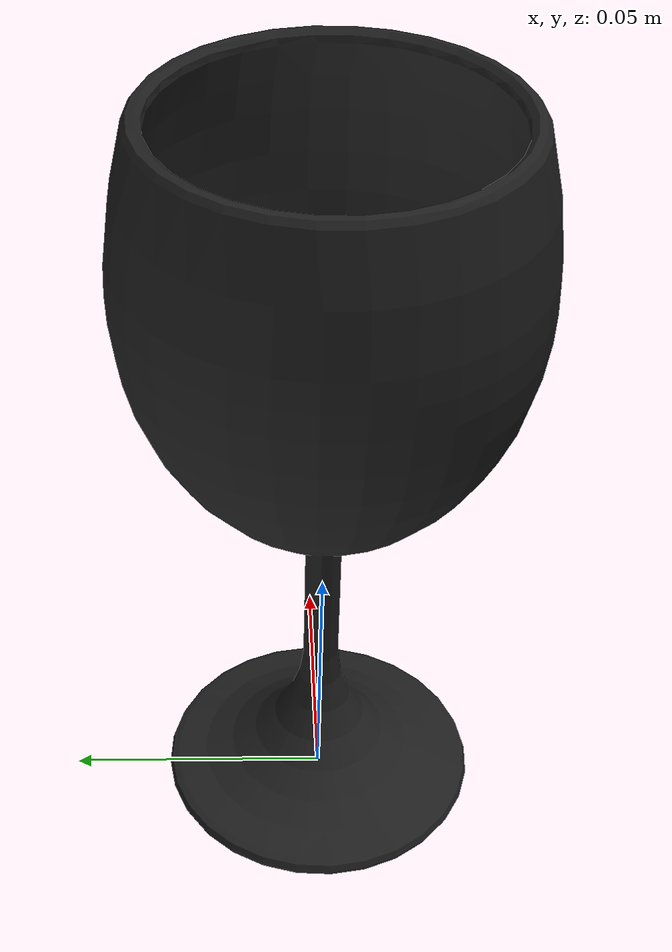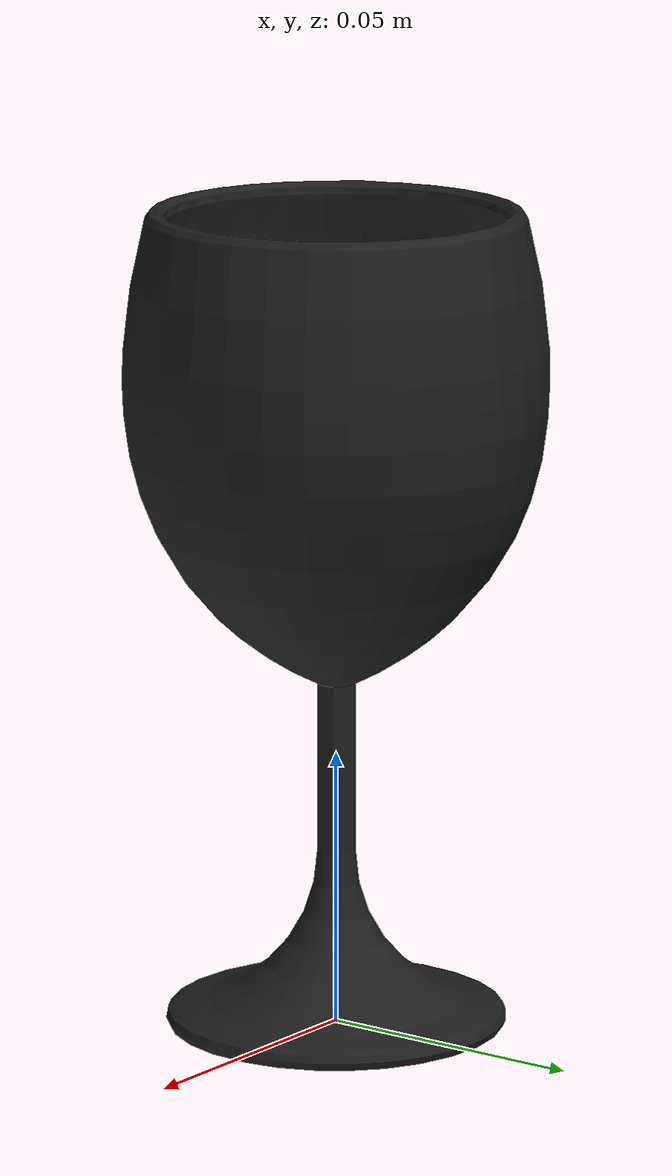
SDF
<?xml version='1.0'?>
<sdf version="1.5">
  <model name="wine_cup"> <!-- Very important to change-->
    <static>false</static>
    <pose>0 0 0 0 0 0</pose> <!-- Translation: X Y Z and Rotation: Roll Pitch Yaw (In Radian)-->
    <link name="body">

    <inertial>
      <mass>0.295</mass>
      <pose>0 0 0.073 0 0 0</pose>
      <inertia>
        <ixx>7.68e-4</ixx>
        <ixy>0.0</ixy>
        <ixz>0.0</ixz>
        <iyy>7.68e-4</iyy>
        <iyz>0.0</iyz>
        <izz>3.66e-4</izz>
      </inertia>
    </inertial>

       <collision name="collision"> <!-- You can use mesh like below -->
        <geometry>
          <mesh>
             <uri>/home/sorox23/robotic_ws/master_thesis_ws/src/property_based_tester/environment/models/wine_cup/meshes/wine_cup.stl</uri>
            <scale>0.001 0.001 0.001</scale>
            </mesh>
        </geometry>
        <surface>
          <friction>
            <ode>
              <mu>100.0</mu>
              <mu2>100.0</mu2>
            </ode>
          </friction>
          <contact>
            <ode>
              <kp>10000000.0</kp>
              <kd>1.0</kd>
              <min_depth>0.001</min_depth>
              <max_vel>0.1</max_vel>
            </ode>
          </contact>
        </surface>
      </collision>

      <visual name="visual">
        <geometry>
          <mesh>
             <uri>/home/sorox23/robotic_ws/master_thesis_ws/src/property_based_tester/environment/models/wine_cup/meshes/wine_cup.stl</uri>
            <scale>0.001 0.001 0.001</scale>
          </mesh>
        </geometry>

        <material>
          <script>
             <uri>/home/sorox23/robotic_ws/master_thesis_ws/src/property_based_tester/environment/models/wine_cup/materials/scripts</uri>
             <uri>/home/sorox23/robotic_ws/master_thesis_ws/src/property_based_tester/environment/models/wine_cup/materials/textures</uri>
             <name>Gazebo/FlatBlack</name>
          </script>
        </material>
      </visual>
    </link>
  </model>
</sdf>
